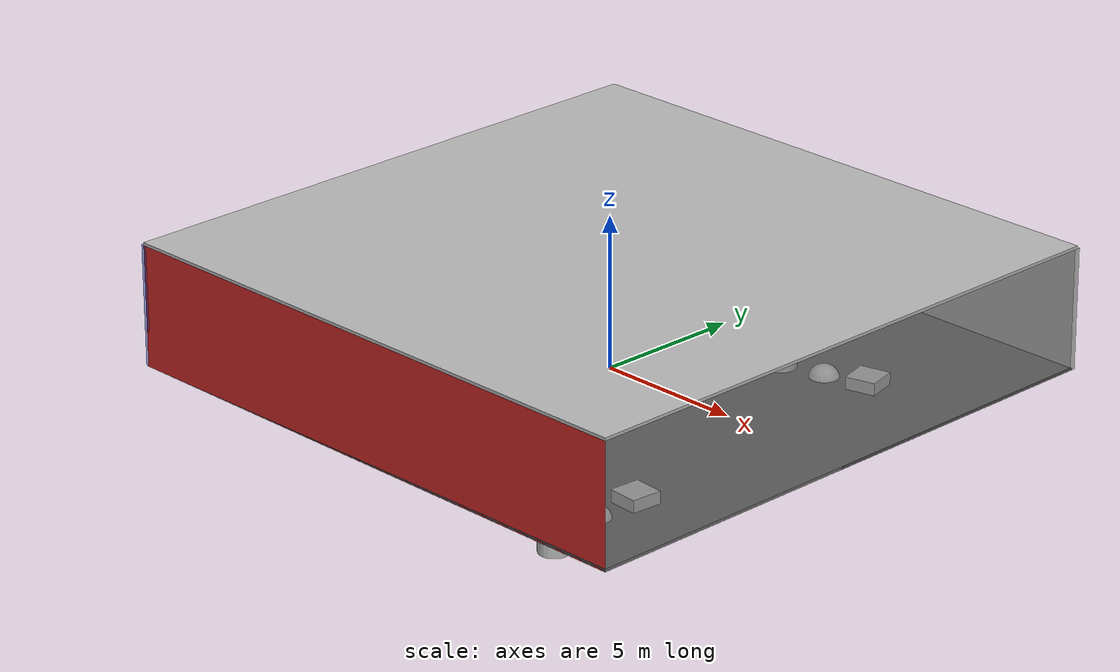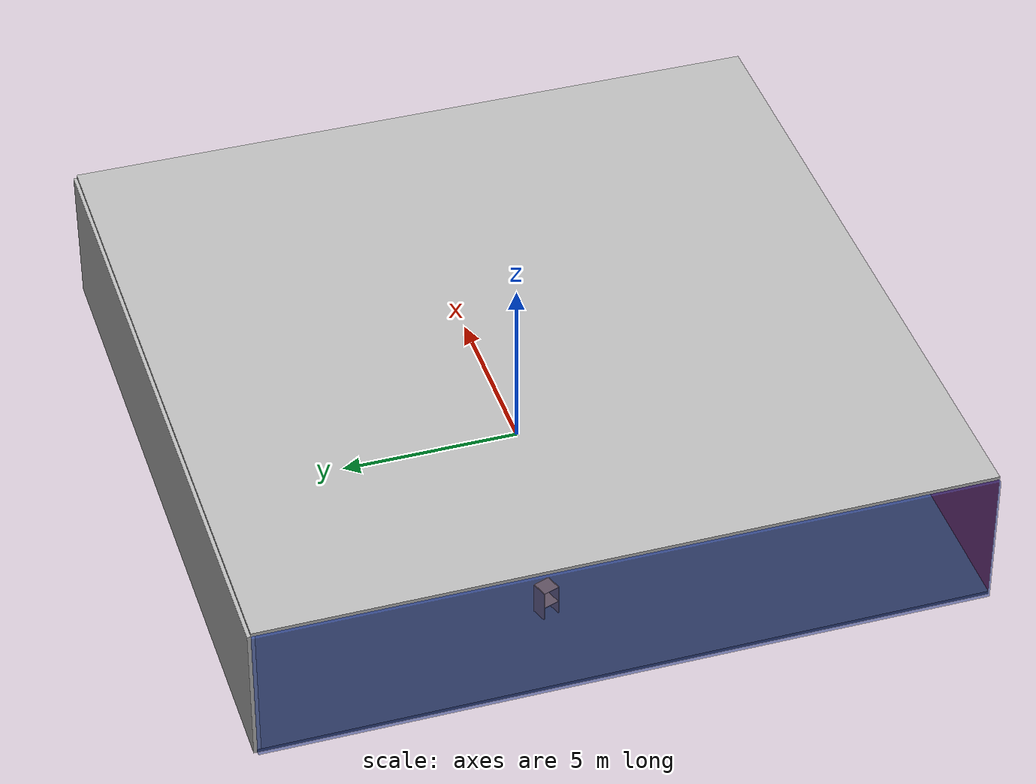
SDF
<sdf version="1.4">
 <world name="default">
  <physics type="ode">
   <max_step_size>0.001</max_step_size>
   <real_time_factor>1</real_time_factor>
   <real_time_update_rate>1000</real_time_update_rate>
   <gravity>0 0 -9.8</gravity>
  </physics>
  <scene><ambient>0.4 0.4 0.4 1</ambient><background>0.7 0.7 0.7 1</background><shadows>1</shadows></scene>
  <model name="Surrounding">
   <static>1</static>
   <link name="Ceiling">
    <collision name="Ceiling_Collision"><geometry><box><size>20 20 0.1</size></box></geometry></collision>
    <visual name="Ceiling_Visual">
     <geometry><box><size>20 20 0.1</size></box></geometry>
     <material>
      <script><uri>file://media/materials/scripts/gazebo.material</uri><name>Gazebo/JointAnchor</name></script>
     </material>
    </visual>
    <pose>0 0 4.05 0 0 0</pose>
   </link>
   <link name="Wall_South">
    <collision name="Wall_South_Collision">
     <geometry><box><size>20 0 4</size></box></geometry>
     <pose>0 0 2 0 -0 0</pose>
    </collision>
    <visual name="Wall_South_Visual">
     <pose>0 0 2 0 -0 0</pose>
     <geometry><box><size>20 0 4</size></box></geometry>
     <material>
      <script><uri>file://media/materials/scripts/gazebo.material</uri><name>Gazebo/Red</name></script>
     </material>
    </visual>
    <velocity_decay><linear>0</linear><angular>0</angular></velocity_decay>
    <pose>0 -10 0 0 -0 0</pose>
   </link>
   <link name="Wall_East">
    <collision name="Wall_21_Collision">
     <geometry><box><size>20 0 4</size></box></geometry>
     <pose>0 0 2 0 -0 0</pose>
    </collision>
    <visual name="Wall_21_Visual">
     <pose>0 0 2 0 -0 0</pose>
     <geometry><box><size>20 0 4</size></box></geometry>
     <material>
      <script><uri>file://media/materials/scripts/gazebo.material</uri><name>Gazebo/GreyTransparent</name></script>
     </material>
    </visual>
    <velocity_decay><linear>0</linear><angular>0</angular></velocity_decay>
    <pose>10 0 0 0 -0 1.5708</pose>
   </link>
   <link name="Wall_North">
    <collision name="Wall_22_Collision">
     <geometry><box><size>20 0.2 4</size></box></geometry>
     <pose>0 0 2 0 -0 0</pose>
    </collision>
    <visual name="Wall_22_Visual">
     <pose>0 0 2 0 -0 0</pose>
     <geometry><box><size>20 0.2 4</size></box></geometry>
     <material>
      <script><uri>file://media/materials/scripts/gazebo.material</uri><name>Gazebo/LightOn</name></script>
     </material>
    </visual>
    <velocity_decay><linear>0</linear><angular>0</angular></velocity_decay>
    <pose>0 10 0 0 -0 0</pose>
   </link>
   <link name="Wall_West">
    <collision name="Wall_23_Collision">
     <geometry><box><size>20 0.2 4</size></box></geometry>
     <pose>0 0 2 0 -0 0</pose>
    </collision>
    <visual name="Wall_23_Visual">
     <pose>0 0 2 0 -0 0</pose>
     <geometry><box><size>20 0.2 4</size></box></geometry>
     <material>
      <script><uri>file://media/materials/scripts/gazebo.material</uri><name>Gazebo/BlueTransparent</name></script>
     </material>
    </visual>
    <velocity_decay><linear>0</linear><angular>0</angular></velocity_decay>
    <pose>-10 0 0 0 0 -1.5708</pose>
   </link>
   <link name="Ground_link">
    <collision name="collision">
     <pose>0 0 .05 0 -0 0</pose>
     <geometry><box><size>20 20 0.1</size></box></geometry>
    </collision>
    <visual name="visual">
     <pose>0 0 .05 0 -0 0</pose>
     <geometry><box><size>20 20 0.1</size></box></geometry>
     <material>
      <script><uri>file://media/materials/scripts/gazebo.material</uri><name>Gazebo/DarkGrey</name></script>
     </material>
    </visual>
   </link>
   <static>1</static>
  </model>
  <spherical_coordinates>
   <surface_model>EARTH_WGS84</surface_model>
   <latitude_deg>0</latitude_deg>
   <longitude_deg>0</longitude_deg>
   <elevation>0</elevation>
   <heading_deg>0</heading_deg>
  </spherical_coordinates>
  <light name="lightball_0" type="diffuse">
   <diffuse>0.8 0.8 0.8 1</diffuse>
   <specular>0.2 0.2 0.2 1</specular>
   <attenuation>
    <range>100</range>
    <constant>0.7</constant>
    <linear>0.01</linear>
    <quadratic>0.001</quadratic>
   </attenuation>
   <direction>-0.5 0.1 -0.9</direction>
   <pose>2.05406962208 4.99500588759 1.76381866605 0 0 0</pose>
  </light>
  <light name="lightball_1" type="diffuse">
   <diffuse>0.8 0.8 0.8 1</diffuse>
   <specular>0.2 0.2 0.2 1</specular>
   <attenuation>
    <range>100</range>
    <constant>0.7</constant>
    <linear>0.01</linear>
    <quadratic>0.001</quadratic>
   </attenuation>
   <direction>-0.5 0.1 -0.9</direction>
   <pose>1.89491632987 1.87012108476 0.594115324946 0 0 0</pose>
  </light>
  <light name="lightball_2" type="diffuse">
   <diffuse>0.8 0.8 0.8 1</diffuse>
   <specular>0.2 0.2 0.2 1</specular>
   <attenuation>
    <range>100</range>
    <constant>0.7</constant>
    <linear>0.01</linear>
    <quadratic>0.001</quadratic>
   </attenuation>
   <direction>-0.5 0.1 -0.9</direction>
   <pose>9.26134219449 5.16090406796 3.59038052937 0 0 0</pose>
  </light>
  <include><uri>model://cabinet</uri><pose>-7.2807244908 1.44147527838 0 0 0 0.33924892562</pose></include>
  <include>
   <uri>model://textured_shapes</uri>
   <pose>-4.10602762131 7.71044234322 0 0 0 2.84713025942</pose>
  </include>
  <include><uri>model://cabinet</uri><pose>1.71644982915 -3.73567728271 0 0 0 0.223033074773</pose></include>
  <include><uri>model://cabinet</uri><pose>1.12837800898 1.42794482281 0 0 0 2.65235169859</pose></include>
  <include>
   <uri>model://textured_shapes</uri>
   <pose>5.16988653393 4.04912457938 0 0 0 1.82491251496</pose>
  </include>
  <include>
   <uri>model://textured_shapes</uri>
   <pose>7.42045368008 -7.87104277515 0 0 0 3.06417316044</pose>
  </include>
 </world>
</sdf>

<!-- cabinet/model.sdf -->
<sdf version="1.5">
  <model name="cabinet">
    <static>true</static>
    <link name="cabinet_bottom_plate">
      <inertial>
        <pose>0 0 -1 0 0 0</pose>
        <inertia>
          <ixx>2.050000</ixx>
          <ixy>0</ixy>
          <ixz>0</ixz>
          <iyy>2.050000</iyy>
          <iyz>0</iyz>
          <izz>2.050000</izz>
        </inertia>
        <mass>25.000000</mass>
      </inertial>
      <collision name="cabinet_bottom_plate_geom">
        <pose>0 0 0.010000 0 0 0</pose>
        <geometry>
          <box>
            <size>0.450000 0.450000 0.020000</size>
          </box>
        </geometry>
      </collision>
      <visual name="cabinet_bottom_plate_geom_visual">
        <pose>0 0 0.010000 0 0 0</pose>
        <geometry>
          <box>
            <size>0.450000 0.450000 0.020000</size>
          </box>
        </geometry>
        <material>
          <script>
            <uri>model://media/materials/scripts/gazebo.material</uri>
            <name>Gazebo/Wood</name>
          </script>
        </material>
      </visual>
      <collision name="cabinet_bottom_plate_geom_cabinet_back_plate">
        <pose>0.235000 0 0.510000 0 0 0</pose>
        <geometry>
          <box>
            <size>0.020000 0.450000 1.020000</size>
          </box>
        </geometry>
      </collision>
      <visual name="cabinet_bottom_plate_geom_cabinet_back_plate_visual">
        <pose>0.235000 0 0.510000 0 0 0</pose>
        <geometry>
          <box>
            <size>0.020000 0.450000 1.020000</size>
          </box>
        </geometry>
        <material>
          <script>
            <uri>model://media/materials/scripts/gazebo.material</uri>
            <name>Gazebo/Wood</name>
          </script>
        </material>
      </visual>
      <collision name="cabinet_bottom_plate_geom_cabinet_left_plate">
        <pose>0 0.235000 0.510000 0 0 0</pose>
        <geometry>
          <box>
            <size>0.450000 0.020000 1.020000</size>
          </box>
        </geometry>
      </collision>
      <visual name="cabinet_bottom_plate_geom_cabinet_left_plate_visual">
        <pose>0 0.235000 0.510000 0 0 0</pose>
        <geometry>
          <box>
            <size>0.450000 0.020000 1.020000</size>
          </box>
        </geometry>
        <material>
          <script>
            <uri>model://media/materials/scripts/gazebo.material</uri>
            <name>Gazebo/Wood</name>
          </script>
        </material>
      </visual>
      <collision name="cabinet_bottom_plate_geom_cabinet_middle_plate">
        <pose>0 0 0.510000 0 0 0</pose>
        <geometry>
          <box>
            <size>0.450000 0.450000 0.020000</size>
          </box>
        </geometry>
      </collision>
      <visual name="cabinet_bottom_plate_geom_cabinet_middle_plate_visual">
        <pose>0 0 0.510000 0 0 0</pose>
        <geometry>
          <box>
            <size>0.450000 0.450000 0.020000</size>
          </box>
        </geometry>
        <material>
          <script>
            <uri>model://media/materials/scripts/gazebo.material</uri>
            <name>Gazebo/Wood</name>
          </script>
        </material>
      </visual>
      <collision name="cabinet_bottom_plate_geom_cabinet_right_plate">
        <pose>0 -0.235000 0.510000 0 0 0</pose>
        <geometry>
          <box>
            <size>0.450000 0.020000 1.020000</size>
          </box>
        </geometry>
      </collision>
      <visual name="cabinet_bottom_plate_geom_cabinet_right_plate_visual">
        <pose>0 -0.235000 0.510000 0 0 0</pose>
        <geometry>
          <box>
            <size>0.450000 0.020000 1.020000</size>
          </box>
        </geometry>
        <material>
          <script>
            <uri>model://media/materials/scripts/gazebo.material</uri>
            <name>Gazebo/Wood</name>
          </script>
        </material>
      </visual>
      <collision name="cabinet_bottom_plate_geom_cabinet_top_plate">
        <pose>0 0 1.010000 0 0 0</pose>
        <geometry>
          <box>
            <size>0.450000 0.450000 0.020000</size>
          </box>
        </geometry>
      </collision>
      <visual name="cabinet_bottom_plate_geom_cabinet_top_plate_visual">
        <pose>0 0 1.010000 0 0 0</pose>
        <geometry>
          <box>
            <size>0.450000 0.450000 0.020000</size>
          </box>
        </geometry>
        <material>
          <script>
            <uri>model://media/materials/scripts/gazebo.material</uri>
            <name>Gazebo/Wood</name>
          </script>
        </material>
      </visual>
    </link>
  </model>
</sdf>

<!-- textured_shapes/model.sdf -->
<sdf version="1.6">
  <model name="textured_shapes">
    <pose>0 0 0.5 0 0 0</pose>
    <link name="box">
      <pose>0 -1.5 0 0 0 0</pose>
      <collision name="collision">
        <geometry>
          <box>
            <size>1 1 1</size>
          </box>
        </geometry>
      </collision>
      <visual name="visual">
        <geometry>
          <box>
            <size>1 1 1</size>
          </box>
        </geometry>
        <material>
          <script>
            <uri>model://../model_source/models/textured_shapes/materials/scripts</uri>
            <uri>model://../model_source/models/textured_shapes/materials/textures</uri>
            <name>TexturedShape/Squares</name>
          </script>
        </material>
      </visual>
    </link>
    <link name="sphere">
      <collision name="collision">
        <geometry>
          <sphere>
            <radius>0.5</radius>
          </sphere>
        </geometry>
      </collision>
      <visual name="visual">
        <geometry>
          <sphere>
            <radius>0.5</radius>
          </sphere>
        </geometry>
        <material>
          <script>
            <uri>model://../model_source/models/textured_shapes/materials/scripts</uri>
            <uri>model://../model_source/models/textured_shapes/materials/textures</uri>
            <name>TexturedShape/Squares</name>
          </script>
        </material>
      </visual>
    </link>
    <link name="cylinder">
      <pose>0 1.5 0 0 0 0</pose>
      <collision name="collision">
        <geometry>
          <cylinder>
            <radius>0.5</radius>
            <length>1</length>
          </cylinder>
        </geometry>
      </collision>
      <visual name="visual">
        <geometry>
          <cylinder>
            <radius>0.5</radius>
            <length>1</length>
          </cylinder>
        </geometry>
        <material>
          <script>
            <uri>model://../model_source/models/textured_shapes/materials/scripts</uri>
            <uri>model://../model_source/models/textured_shapes/materials/textures</uri>
            <name>TexturedShape/Squares</name>
          </script>
        </material>
      </visual>
    </link>
  </model>
</sdf>
